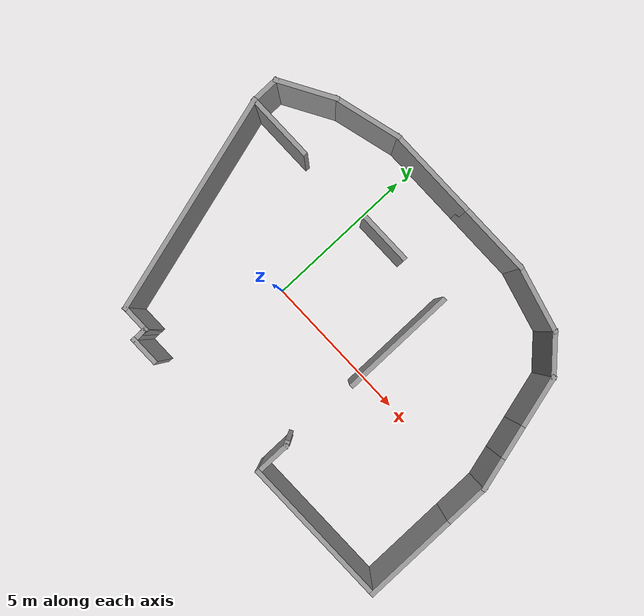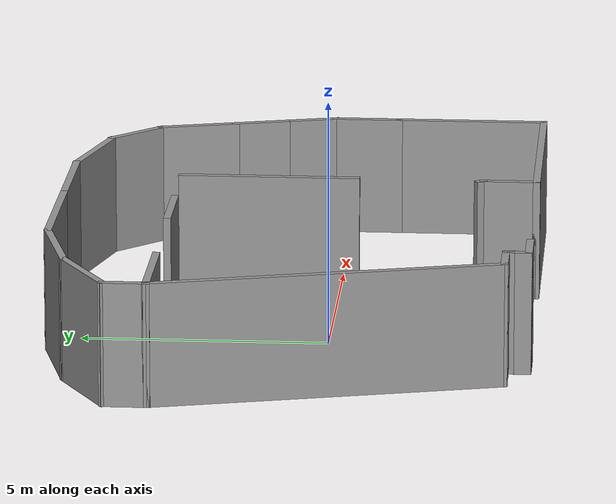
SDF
<?xml version='1.0'?>
<sdf version='1.6'>
  <model name='map'>
    <pose frame=''>1.95566 0.751725 0 0 -0 0</pose>
    <link name='Wall_0'>
      <collision name='Wall_0_Collision'>
        <geometry>
          <box>
            <size>1 0.15 2.5</size>
          </box>
        </geometry>
        <pose frame=''>0 0 1.25 0 -0 0</pose>
      </collision>
      <visual name='Wall_0_Visual'>
        <pose frame=''>0 0 1.25 0 -0 0</pose>
        <geometry>
          <box>
            <size>1 0.15 2.5</size>
          </box>
        </geometry>
        <material>
          <script>
            <uri>file://media/materials/scripts/gazebo.material</uri>
            <name>Gazebo/Grey</name>
          </script>
          <ambient>1 1 1 1</ambient>
        </material>
        <meta>
          <layer>0</layer>
        </meta>
      </visual>
      <pose frame=''>-3.28066 -4.82172 0 0 -0 3.14159</pose>
    </link>
    <link name='Wall_1'>
      <collision name='Wall_1_Collision'>
        <geometry>
          <box>
            <size>0.5 0.15 2.5</size>
          </box>
        </geometry>
        <pose frame=''>0 0 1.25 0 -0 0</pose>
      </collision>
      <visual name='Wall_1_Visual'>
        <pose frame=''>0 0 1.25 0 -0 0</pose>
        <geometry>
          <box>
            <size>0.5 0.15 2.5</size>
          </box>
        </geometry>
        <material>
          <script>
            <uri>file://media/materials/scripts/gazebo.material</uri>
            <name>Gazebo/Grey</name>
          </script>
          <ambient>1 1 1 1</ambient>
        </material>
        <meta>
          <layer>0</layer>
        </meta>
      </visual>
      <pose frame=''>-3.70566 -4.64672 0 0 -0 1.5708</pose>
    </link>
    <link name='Wall_2'>
      <collision name='Wall_2_Collision'>
        <geometry>
          <box>
            <size>0.25 0.15 2.5</size>
          </box>
        </geometry>
        <pose frame=''>0 0 1.25 0 -0 0</pose>
      </collision>
      <visual name='Wall_2_Visual'>
        <pose frame=''>0 0 1.25 0 -0 0</pose>
        <geometry>
          <box>
            <size>0.25 0.15 2.5</size>
          </box>
        </geometry>
        <material>
          <script>
            <uri>file://media/materials/scripts/gazebo.material</uri>
            <name>Gazebo/Grey</name>
          </script>
          <ambient>1 1 1 1</ambient>
        </material>
        <meta>
          <layer>0</layer>
        </meta>
      </visual>
      <pose frame=''>-3.70566 -4.42173 0 0 -0 1.5708</pose>
    </link>
    <link name='Wall_3'>
      <collision name='Wall_3_Collision'>
        <geometry>
          <box>
            <size>1 0.15 2.5</size>
          </box>
        </geometry>
        <pose frame=''>0 0 1.25 0 -0 0</pose>
      </collision>
      <visual name='Wall_3_Visual'>
        <pose frame=''>0 0 1.25 0 -0 0</pose>
        <geometry>
          <box>
            <size>1 0.15 2.5</size>
          </box>
        </geometry>
        <material>
          <script>
            <uri>file://media/materials/scripts/gazebo.material</uri>
            <name>Gazebo/Grey</name>
          </script>
          <ambient>1 1 1 1</ambient>
        </material>
        <meta>
          <layer>0</layer>
        </meta>
      </visual>
      <pose frame=''>-4.13066 -4.37172 0 0 -0 3.14159</pose>
    </link>
    <link name='Wall_31'>
      <collision name='Wall_31_Collision'>
        <geometry>
          <box>
            <size>2 0.15 2.5</size>
          </box>
        </geometry>
        <pose frame=''>0 0 1.25 0 -0 0</pose>
      </collision>
      <visual name='Wall_31_Visual'>
        <pose frame=''>0 0 1.25 0 -0 0</pose>
        <geometry>
          <box>
            <size>2 0.15 2.5</size>
          </box>
        </geometry>
        <material>
          <script>
            <uri>file://media/materials/scripts/gazebo.material</uri>
            <name>Gazebo/Grey</name>
          </script>
          <ambient>1 1 1 1</ambient>
        </material>
        <meta>
          <layer>0</layer>
        </meta>
      </visual>
      <pose frame=''>-5.5922 3.79885 0 0 -0 0.523599</pose>
    </link>
    <link name='Wall_32'>
      <collision name='Wall_32_Collision'>
        <geometry>
          <box>
            <size>2.25 0.15 2.5</size>
          </box>
        </geometry>
        <pose frame=''>0 0 1.25 0 -0 0</pose>
      </collision>
      <visual name='Wall_32_Visual'>
        <pose frame=''>0 0 1.25 0 -0 0</pose>
        <geometry>
          <box>
            <size>2.25 0.15 2.5</size>
          </box>
        </geometry>
        <material>
          <script>
            <uri>file://media/materials/scripts/gazebo.material</uri>
            <name>Gazebo/Grey</name>
          </script>
          <ambient>1 1 1 1</ambient>
        </material>
        <meta>
          <layer>0</layer>
        </meta>
      </visual>
      <pose frame=''>-3.7769 4.53311 0 0 -0 0.261799</pose>
    </link>
    <link name='Wall_33'>
      <collision name='Wall_33_Collision'>
        <geometry>
          <box>
            <size>3 0.15 2.5</size>
          </box>
        </geometry>
        <pose frame=''>0 0 1.25 0 -0 0</pose>
      </collision>
      <visual name='Wall_33_Visual'>
        <pose frame=''>0 0 1.25 0 -0 0</pose>
        <geometry>
          <box>
            <size>3 0.15 2.5</size>
          </box>
        </geometry>
        <material>
          <script>
            <uri>file://media/materials/scripts/gazebo.material</uri>
            <name>Gazebo/Grey</name>
          </script>
          <ambient>1 1 1 1</ambient>
        </material>
        <meta>
          <layer>0</layer>
        </meta>
      </visual>
      <pose frame=''>-1.33768 4.80487 0 0 -0 0</pose>
    </link>
    <link name='Wall_34'>
      <collision name='Wall_34_Collision'>
        <geometry>
          <box>
            <size>2.5 0.15 2.5</size>
          </box>
        </geometry>
        <pose frame=''>0 0 1.25 0 -0 0</pose>
      </collision>
      <visual name='Wall_34_Visual'>
        <pose frame=''>0 0 1.25 0 -0 0</pose>
        <geometry>
          <box>
            <size>2.5 0.15 2.5</size>
          </box>
        </geometry>
        <material>
          <script>
            <uri>file://media/materials/scripts/gazebo.material</uri>
            <name>Gazebo/Grey</name>
          </script>
          <ambient>1 1 1 1</ambient>
        </material>
        <meta>
          <layer>0</layer>
        </meta>
      </visual>
      <pose frame=''>1.26232 4.80487 0 0 -0 0</pose>
    </link>
    <link name='Wall_35'>
      <collision name='Wall_35_Collision'>
        <geometry>
          <box>
            <size>2.25 0.15 2.5</size>
          </box>
        </geometry>
        <pose frame=''>0 0 1.25 0 -0 0</pose>
      </collision>
      <visual name='Wall_35_Visual'>
        <pose frame=''>0 0 1.25 0 -0 0</pose>
        <geometry>
          <box>
            <size>2.25 0.15 2.5</size>
          </box>
        </geometry>
        <material>
          <script>
            <uri>file://media/materials/scripts/gazebo.material</uri>
            <name>Gazebo/Grey</name>
          </script>
          <ambient>1 1 1 1</ambient>
        </material>
        <meta>
          <layer>0</layer>
        </meta>
      </visual>
      <pose frame=''>3.45154 4.53311 0 0 -0 -0.261799</pose>
    </link>
    <link name='Wall_36'>
      <collision name='Wall_36_Collision'>
        <geometry>
          <box>
            <size>1.5 0.15 2.5</size>
          </box>
        </geometry>
        <pose frame=''>0 0 1.25 0 -0 0</pose>
      </collision>
      <visual name='Wall_36_Visual'>
        <pose frame=''>0 0 1.25 0 -0 0</pose>
        <geometry>
          <box>
            <size>1.5 0.15 2.5</size>
          </box>
        </geometry>
        <material>
          <script>
            <uri>file://media/materials/scripts/gazebo.material</uri>
            <name>Gazebo/Grey</name>
          </script>
          <ambient>1 1 1 1</ambient>
        </material>
        <meta>
          <layer>0</layer>
        </meta>
      </visual>
      <pose frame=''>4.94306 3.78405 0 0 -0 -0.785398</pose>
    </link>
    <link name='Wall_37'>
      <collision name='Wall_37_Collision'>
        <geometry>
          <box>
            <size>1.75 0.15 2.5</size>
          </box>
        </geometry>
        <pose frame=''>0 0 1.25 0 -0 0</pose>
      </collision>
      <visual name='Wall_37_Visual'>
        <pose frame=''>0 0 1.25 0 -0 0</pose>
        <geometry>
          <box>
            <size>1.75 0.15 2.5</size>
          </box>
        </geometry>
        <material>
          <script>
            <uri>file://media/materials/scripts/gazebo.material</uri>
            <name>Gazebo/Grey</name>
          </script>
          <ambient>1 1 1 1</ambient>
        </material>
        <meta>
          <layer>0</layer>
        </meta>
      </visual>
      <pose frame=''>5.62741 2.53401 0 0 -0 -1.309</pose>
    </link>
    <link name='Wall_38'>
      <collision name='Wall_38_Collision'>
        <geometry>
          <box>
            <size>1.25 0.15 2.5</size>
          </box>
        </geometry>
        <pose frame=''>0 0 1.25 0 -0 0</pose>
      </collision>
      <visual name='Wall_38_Visual'>
        <pose frame=''>0 0 1.25 0 -0 0</pose>
        <geometry>
          <box>
            <size>1.25 0.15 2.5</size>
          </box>
        </geometry>
        <material>
          <script>
            <uri>file://media/materials/scripts/gazebo.material</uri>
            <name>Gazebo/Grey</name>
          </script>
          <ambient>1 1 1 1</ambient>
        </material>
        <meta>
          <layer>0</layer>
        </meta>
      </visual>
      <pose frame=''>5.97682 1.23001 0 0 -0 -1.309</pose>
    </link>
    <link name='Wall_39'>
      <collision name='Wall_39_Collision'>
        <geometry>
          <box>
            <size>1.25 0.15 2.5</size>
          </box>
        </geometry>
        <pose frame=''>0 0 1.25 0 -0 0</pose>
      </collision>
      <visual name='Wall_39_Visual'>
        <pose frame=''>0 0 1.25 0 -0 0</pose>
        <geometry>
          <box>
            <size>1.25 0.15 2.5</size>
          </box>
        </geometry>
        <material>
          <script>
            <uri>file://media/materials/scripts/gazebo.material</uri>
            <name>Gazebo/Grey</name>
          </script>
          <ambient>1 1 1 1</ambient>
        </material>
        <meta>
          <layer>0</layer>
        </meta>
      </visual>
      <pose frame=''>6.26152 0.167496 0 0 -0 -1.309</pose>
    </link>
    <link name='Wall_4'>
      <collision name='Wall_4_Collision'>
        <geometry>
          <box>
            <size>7.25 0.15 2.5</size>
          </box>
        </geometry>
        <pose frame=''>0 0 1.25 0 -0 0</pose>
      </collision>
      <visual name='Wall_4_Visual'>
        <pose frame=''>0 0 1.25 0 -0 0</pose>
        <geometry>
          <box>
            <size>7.25 0.15 2.5</size>
          </box>
        </geometry>
        <material>
          <script>
            <uri>file://media/materials/scripts/gazebo.material</uri>
            <name>Gazebo/Grey</name>
          </script>
          <ambient>1 1 1 1</ambient>
        </material>
        <meta>
          <layer>0</layer>
        </meta>
      </visual>
      <pose frame=''>-5.47447 -0.942688 0 0 -0 1.8326</pose>
    </link>
    <link name='Wall_40'>
      <collision name='Wall_40_Collision'>
        <geometry>
          <box>
            <size>1.5 0.15 2.5</size>
          </box>
        </geometry>
        <pose frame=''>0 0 1.25 0 -0 0</pose>
      </collision>
      <visual name='Wall_40_Visual'>
        <pose frame=''>0 0 1.25 0 -0 0</pose>
        <geometry>
          <box>
            <size>1.5 0.15 2.5</size>
          </box>
        </geometry>
        <material>
          <script>
            <uri>file://media/materials/scripts/gazebo.material</uri>
            <name>Gazebo/Grey</name>
          </script>
          <ambient>1 1 1 1</ambient>
        </material>
        <meta>
          <layer>0</layer>
        </meta>
      </visual>
      <pose frame=''>6.40387 -1.03876 0 0 -0 -1.5708</pose>
    </link>
    <link name='Wall_41'>
      <collision name='Wall_41_Collision'>
        <geometry>
          <box>
            <size>3.25 0.15 2.5</size>
          </box>
        </geometry>
        <pose frame=''>0 0 1.25 0 -0 0</pose>
      </collision>
      <visual name='Wall_41_Visual'>
        <pose frame=''>0 0 1.25 0 -0 0</pose>
        <geometry>
          <box>
            <size>3.25 0.15 2.5</size>
          </box>
        </geometry>
        <material>
          <script>
            <uri>file://media/materials/scripts/gazebo.material</uri>
            <name>Gazebo/Grey</name>
          </script>
          <ambient>1 1 1 1</ambient>
        </material>
        <meta>
          <layer>0</layer>
        </meta>
      </visual>
      <pose frame=''>6.40387 -3.26376 0 0 -0 -1.5708</pose>
    </link>
    <link name='Wall_42'>
      <collision name='Wall_42_Collision'>
        <geometry>
          <box>
            <size>5 0.15 2.5</size>
          </box>
        </geometry>
        <pose frame=''>0 0 1.25 0 -0 0</pose>
      </collision>
      <visual name='Wall_42_Visual'>
        <pose frame=''>0 0 1.25 0 -0 0</pose>
        <geometry>
          <box>
            <size>5 0.15 2.5</size>
          </box>
        </geometry>
        <material>
          <script>
            <uri>file://media/materials/scripts/gazebo.material</uri>
            <name>Gazebo/Grey</name>
          </script>
          <ambient>1 1 1 1</ambient>
        </material>
        <meta>
          <layer>0</layer>
        </meta>
      </visual>
      <pose frame=''>3.97887 -4.81376 0 0 -0 3.14159</pose>
    </link>
    <link name='Wall_43'>
      <collision name='Wall_43_Collision'>
        <geometry>
          <box>
            <size>1.25 0.15 2.5</size>
          </box>
        </geometry>
        <pose frame=''>0 0 1.25 0 -0 0</pose>
      </collision>
      <visual name='Wall_43_Visual'>
        <pose frame=''>0 0 1.25 0 -0 0</pose>
        <geometry>
          <box>
            <size>1.25 0.15 2.5</size>
          </box>
        </geometry>
        <material>
          <script>
            <uri>file://media/materials/scripts/gazebo.material</uri>
            <name>Gazebo/Grey</name>
          </script>
          <ambient>1 1 1 1</ambient>
        </material>
        <meta>
          <layer>0</layer>
        </meta>
      </visual>
      <pose frame=''>1.55387 -4.26376 0 0 -0 1.5708</pose>
    </link>
    <link name='Wall_44'>
      <collision name='Wall_44_Collision'>
        <geometry>
          <box>
            <size>0.25 0.15 2.5</size>
          </box>
        </geometry>
        <pose frame=''>0 0 1.25 0 -0 0</pose>
      </collision>
      <visual name='Wall_44_Visual'>
        <pose frame=''>0 0 1.25 0 -0 0</pose>
        <geometry>
          <box>
            <size>0.25 0.15 2.5</size>
          </box>
        </geometry>
        <material>
          <script>
            <uri>file://media/materials/scripts/gazebo.material</uri>
            <name>Gazebo/Grey</name>
          </script>
          <ambient>0 0 0 1</ambient>
        </material>
        <meta>
          <layer>0</layer>
        </meta>
      </visual>
      <pose frame=''>1.52887 -3.67046 0 0 -0 2.0944</pose>
    </link>
    <link name='Wall_45'>
      <collision name='Wall_45_Collision'>
        <geometry>
          <box>
            <size>1.75 0.15 2.5</size>
          </box>
        </geometry>
        <pose frame=''>0 0 1.25 0 -0 0</pose>
      </collision>
      <visual name='Wall_45_Visual'>
        <pose frame=''>0 0 1.25 0 -0 0</pose>
        <geometry>
          <box>
            <size>1.75 0.15 2.5</size>
          </box>
        </geometry>
        <material>
          <script>
            <uri>file://media/materials/scripts/gazebo.material</uri>
            <name>Gazebo/Grey</name>
          </script>
          <ambient>1 1 1 1</ambient>
        </material>
        <meta>
          <layer>0</layer>
        </meta>
      </visual>
      <pose frame=''>-0.889981 2.51315 0 0 -0 0</pose>
    </link>
    <link name='Wall_47'>
      <collision name='Wall_47_Collision'>
        <geometry>
          <box>
            <size>3.75 0.15 2.5</size>
          </box>
        </geometry>
        <pose frame=''>0 0 1.25 0 -0 0</pose>
      </collision>
      <visual name='Wall_47_Visual'>
        <pose frame=''>0 0 1.25 0 -0 0</pose>
        <geometry>
          <box>
            <size>3.75 0.15 2.5</size>
          </box>
        </geometry>
        <material>
          <script>
            <uri>file://media/materials/scripts/gazebo.material</uri>
            <name>Gazebo/Grey</name>
          </script>
          <ambient>1 1 1 1</ambient>
        </material>
        <meta>
          <layer>0</layer>
        </meta>
      </visual>
      <pose frame=''>1.59511 0.71315 0 0 -0 -1.5708</pose>
    </link>
    <link name='Wall_5'>
      <collision name='Wall_5_Collision'>
        <geometry>
          <box>
            <size>2.25 0.15 2.5</size>
          </box>
        </geometry>
        <pose frame=''>0 0 1.25 0 -0 0</pose>
      </collision>
      <visual name='Wall_5_Visual'>
        <pose frame=''>0 0 1.25 0 -0 0</pose>
        <geometry>
          <box>
            <size>2.25 0.15 2.5</size>
          </box>
        </geometry>
        <material>
          <script>
            <uri>file://media/materials/scripts/gazebo.material</uri>
            <name>Gazebo/Grey</name>
          </script>
          <ambient>1 1 1 1</ambient>
        </material>
        <meta>
          <layer>0</layer>
        </meta>
      </visual>
      <pose frame=''>-5.34327 2.48635 0 0 -0 0</pose>
    </link>
    <link name='Wall_7'>
      <collision name='Wall_7_Collision'>
        <geometry>
          <box>
            <size>1 0.15 2.5</size>
          </box>
        </geometry>
        <pose frame=''>0 0 1.25 0 -0 0</pose>
      </collision>
      <visual name='Wall_7_Visual'>
        <pose frame=''>0 0 1.25 0 -0 0</pose>
        <geometry>
          <box>
            <size>1 0.15 2.5</size>
          </box>
        </geometry>
        <material>
          <script>
            <uri>file://media/materials/scripts/gazebo.material</uri>
            <name>Gazebo/Grey</name>
          </script>
          <ambient>1 1 1 1</ambient>
        </material>
        <meta>
          <layer>0</layer>
        </meta>
      </visual>
      <pose frame=''>-6.39327 2.91135 0 0 -0 1.5708</pose>
    </link>
    <static>1</static>
  </model>
</sdf>
